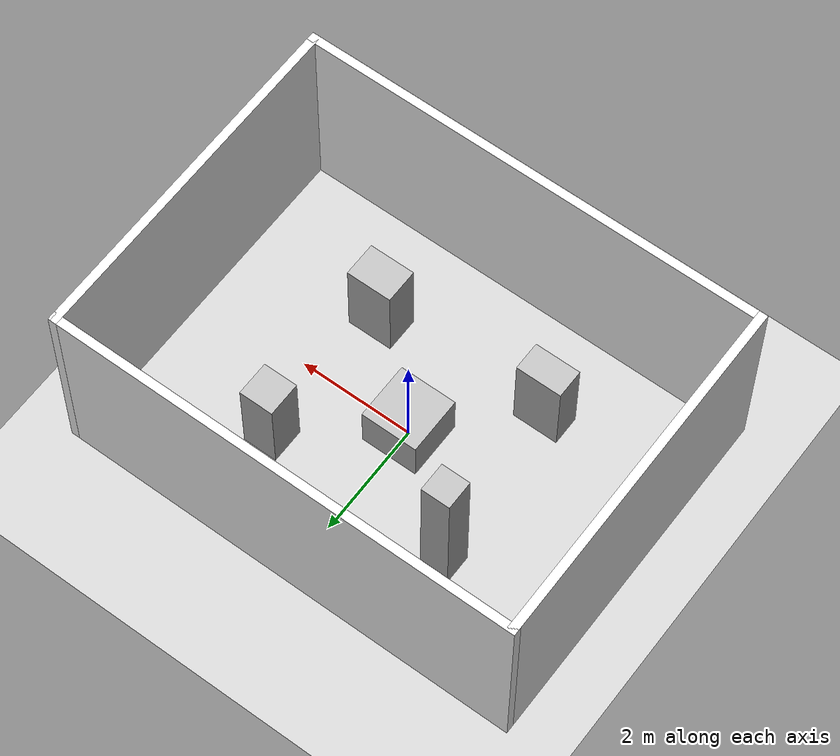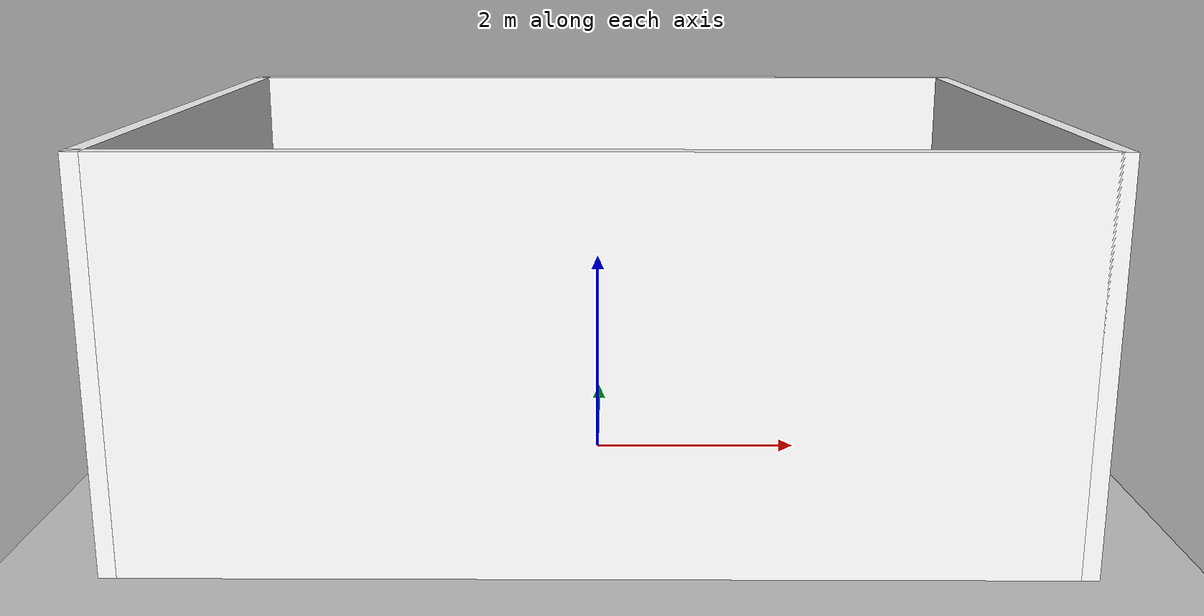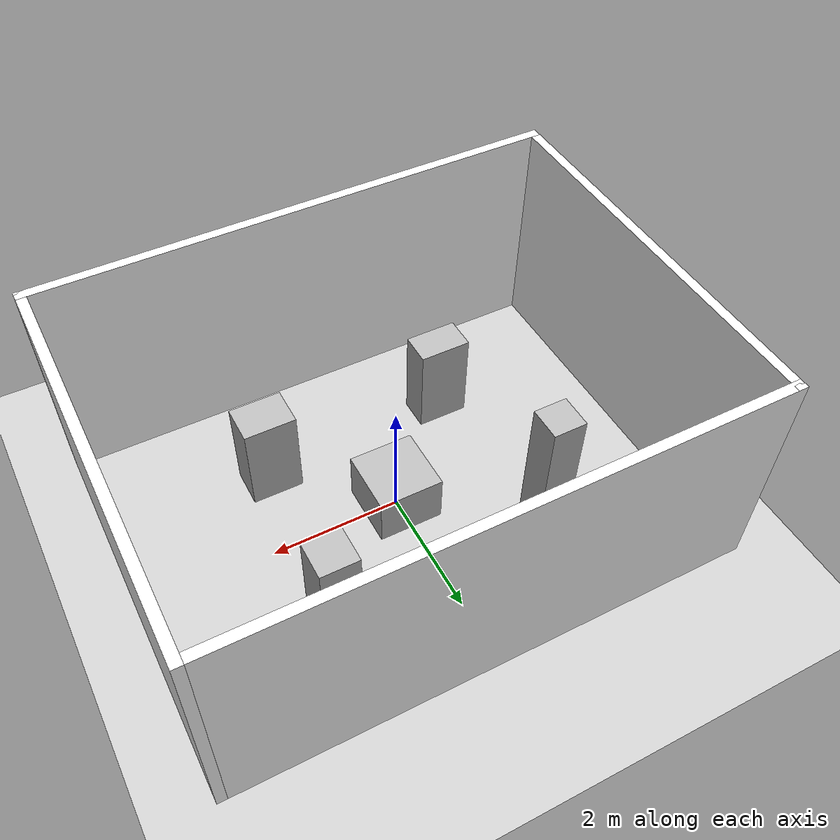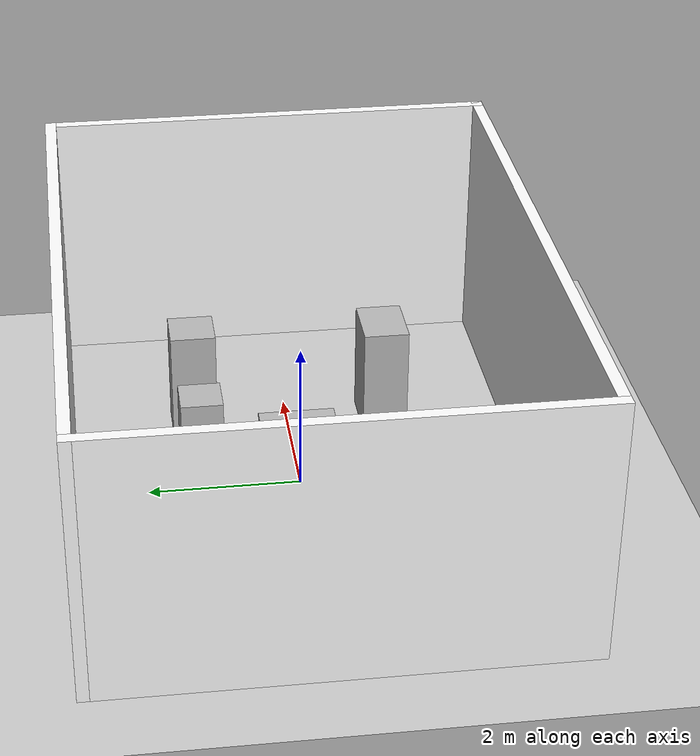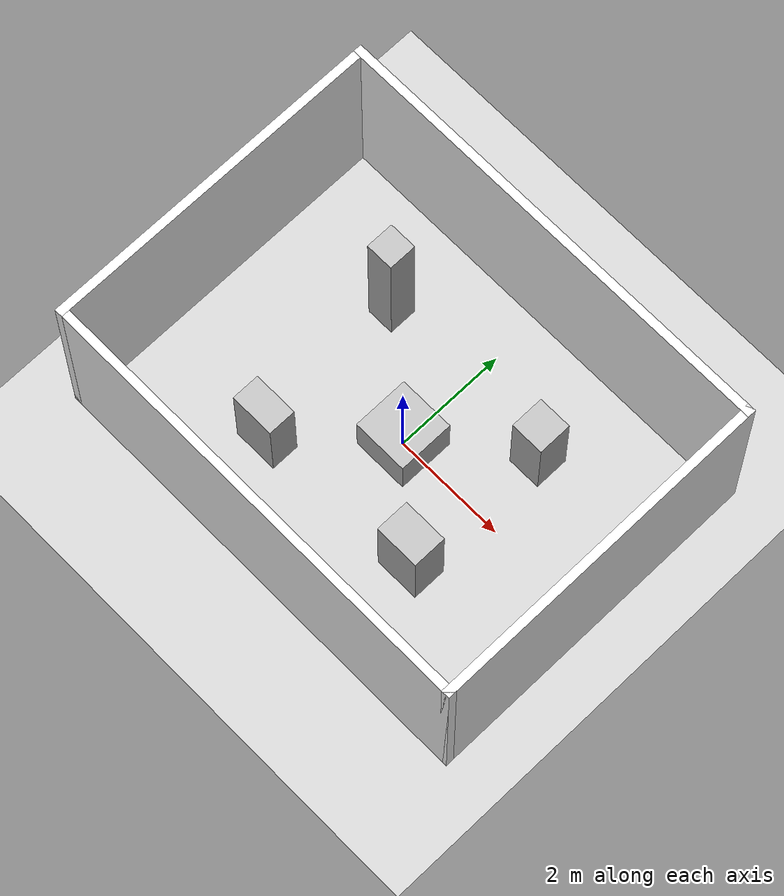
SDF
<sdf version='1.6'>
  <world name='default'>
    <light name='sun' type='directional'>
      <cast_shadows>1</cast_shadows>
      <pose frame=''>0 0 10 0 -0 0</pose>
      <diffuse>0.8 0.8 0.8 1</diffuse>
      <specular>0.2 0.2 0.2 1</specular>
      <attenuation>
        <range>1000</range>
        <constant>0.9</constant>
        <linear>0.01</linear>
        <quadratic>0.001</quadratic>
      </attenuation>
      <direction>-0.5 0.1 -0.9</direction>
    </light>
    <gravity>0 0 -9.8</gravity>
    <magnetic_field>6e-06 2.3e-05 -4.2e-05</magnetic_field>
    <atmosphere type='adiabatic'/>
    <physics name='default_physics' default='0' type='ode'>
      <max_step_size>0.001</max_step_size>
      <real_time_factor>1</real_time_factor>
      <real_time_update_rate>1000</real_time_update_rate>
    </physics>
    <scene>
      <ambient>0.4 0.4 0.4 1</ambient>
      <background>0.7 0.7 0.7 1</background>
      <shadows>1</shadows>
    </scene>
    <audio>
      <device>default</device>
    </audio>
    <wind/>
    <spherical_coordinates>
      <surface_model>EARTH_WGS84</surface_model>
      <latitude_deg>0</latitude_deg>
      <longitude_deg>0</longitude_deg>
      <elevation>0</elevation>
      <heading_deg>0</heading_deg>
    </spherical_coordinates>
    <model name='Indoor20x20'>
      <pose frame=''>0.021784 -0.019828 0 0 -0 0</pose>
      <link name='Wall_0'>
        <collision name='Wall_0_Collision'>
          <geometry>
            <box>
              <size>8.15 0.15 3.5</size>
            </box>
          </geometry>
          <pose frame=''>0 0 1.75 0 -0 0</pose>
          <max_contacts>10</max_contacts>
          <surface>
            <contact>
              <ode/>
            </contact>
            <bounce/>
            <friction>
              <torsional>
                <ode/>
              </torsional>
              <ode/>
            </friction>
          </surface>
        </collision>
        <visual name='Wall_0_Visual'>
          <pose frame=''>0 0 1.75 0 -0 0</pose>
          <geometry>
            <box>
              <size>8.15 0.15 3.5</size>
            </box>
          </geometry>
          <material>
            <script>
              <uri>file://media/materials/scripts/wallpaper.material</uri>
              <name>wallpaper/wallpaper1</name>
            </script>
            <ambient>1 1 1 1</ambient>
          </material>
          <meta>
            <layer>0</layer>
          </meta>
        </visual>
        <pose frame=''>0 3 0 0 -0 3.14159</pose>
        <self_collide>0</self_collide>
        <enable_wind>0</enable_wind>
        <kinematic>0</kinematic>
      </link>

      <link name='Wall_2'>
        <collision name='Wall_2_Collision'>
          <geometry>
            <box>
              <size>6.15 0.15 3.5</size>
            </box>
          </geometry>
          <pose frame=''>0 0 1.75 0 -0 0</pose>
          <max_contacts>10</max_contacts>
          <surface>
            <contact>
              <ode/>
            </contact>
            <bounce/>
            <friction>
              <torsional>
                <ode/>
              </torsional>
              <ode/>
            </friction>
          </surface>
        </collision>
        <visual name='Wall_2_Visual'>
          <pose frame=''>0 0 1.75 0 -0 0</pose>
          <geometry>
            <box>
              <size>6.15 0.15 3.5</size>
            </box>
          </geometry>
          <material>
            <script>
              <uri>file://media/materials/scripts/wallpaper.material</uri>
              <name>wallpaper/wallpaper1</name>
            </script>
            <ambient>1 1 1 1</ambient>
          </material>
          <meta>
            <layer>0</layer>
          </meta>
        </visual>
        <pose frame=''>-4 0 0 0 -0 -1.5708</pose>
        <self_collide>0</self_collide>
        <enable_wind>0</enable_wind>
        <kinematic>0</kinematic>
      </link>
      <link name='Wall_4'>
        <collision name='Wall_4_Collision'>
          <geometry>
            <box>
              <size>8.15 0.15 3.5</size>
            </box>
          </geometry>
          <pose frame=''>0 0 1.75 0 -0 0</pose>
          <max_contacts>10</max_contacts>
          <surface>
            <contact>
              <ode/>
            </contact>
            <bounce/>
            <friction>
              <torsional>
                <ode/>
              </torsional>
              <ode/>
            </friction>
          </surface>
        </collision>
        <visual name='Wall_4_Visual'>
          <pose frame=''>0 0 1.75 0 -0 0</pose>
          <geometry>
            <box>
              <size>8.15 0.15 3.5</size>
            </box>
          </geometry>
          <material>
            <script>
              <uri>file://media/materials/scripts/wallpaper.material</uri>
              <name>wallpaper/wallpaperpolyu</name>
            </script>
            <ambient>1 1 1 1</ambient>
          </material>
          <meta>
            <layer>0</layer>
          </meta>
        </visual>
        <pose frame=''>0 -3 0 0 -0 0</pose>
        <self_collide>0</self_collide>
        <enable_wind>0</enable_wind>
        <kinematic>0</kinematic>
      </link>
      <link name='Wall_6'>
        <collision name='Wall_6_Collision'>
          <geometry>
            <box>
              <size>6.15 0.15 3.5</size>
            </box>
          </geometry>
          <pose frame=''>0 0 1.75 0 -0 0</pose>
          <max_contacts>10</max_contacts>
          <surface>
            <contact>
              <ode/>
            </contact>
            <bounce/>
            <friction>
              <torsional>
                <ode/>
              </torsional>
              <ode/>
            </friction>
          </surface>
        </collision>
        <visual name='Wall_6_Visual'>
          <pose frame=''>0 0 1.75 0 -0 0</pose>
          <geometry>
            <box>
              <size>6.15 0.15 3.5</size>
            </box>
          </geometry>
          <material>
            <script>
              <uri>file://media/materials/scripts/wallpaper.material</uri>
              <name>wallpaper/wallpaper1</name>
            </script>
            <ambient>1 1 1 1</ambient>
          </material>
          <meta>
            <layer>0</layer>
          </meta>
        </visual>
        <pose frame=''>4 0 0 0 -0 -1.5708</pose>
        <self_collide>0</self_collide>
        <enable_wind>0</enable_wind>
        <kinematic>0</kinematic>
      </link>
      <static>1</static>
    </model>
    <model name='my_ground_plane'>
      <static>1</static>
      <link name='link'>
        <collision name='collision'>
          <geometry>
            <plane>
              <normal>0 0 1</normal>
              <size>10 10</size>
            </plane>
          </geometry>
          <surface>
            <friction>
              <ode>
                <mu>100</mu>
                <mu2>50</mu2>
              </ode>
              <torsional>
                <ode/>
              </torsional>
            </friction>
            <contact>
              <ode/>
            </contact>
            <bounce/>
          </surface>
          <max_contacts>10</max_contacts>
        </collision>
        <visual name='visual'>
          <cast_shadows>0</cast_shadows>
          <geometry>
            <plane>
              <normal>0 0 1</normal>
              <size>10 10</size>
            </plane>
          </geometry>
          <material>
            <script>
              <uri>model://ground20x20/materials/scripts</uri>
              <uri>model://ground20x20/materials/textures</uri>
              <name>WoodGround/Image</name>
            </script>
          </material>
        </visual>
        <self_collide>0</self_collide>
        <enable_wind>0</enable_wind>
        <kinematic>0</kinematic>
      </link>
      <pose frame=''>0.013273 0.01508 0 0 -0 0</pose>
    </model>
    <model name='unit_box_0'>
      <pose frame=''>1.62928 1.27733 0.75 0 -0 0</pose>
      <link name='link'>
        <inertial>
          <mass>1</mass>
          <inertia>
            <ixx>0.166667</ixx>
            <ixy>0</ixy>
            <ixz>0</ixz>
            <iyy>0.166667</iyy>
            <iyz>0</iyz>
            <izz>0.166667</izz>
          </inertia>
        </inertial>
        <collision name='collision'>
          <geometry>
            <box>
              <size>0.6 0.6 1.5</size>
            </box>
          </geometry>
          <max_contacts>10</max_contacts>
          <surface>
            <contact>
              <ode/>
            </contact>
            <bounce/>
            <friction>
              <torsional>
                <ode/>
              </torsional>
              <ode/>
            </friction>
          </surface>
        </collision>
        <visual name='visual'>
          <geometry>
            <box>
              <size>0.6 0.6 1.5</size>
            </box>
          </geometry>
          <material>
            <script>
              <uri>file://media/materials/scripts/wallpaper.material</uri>
              <name>wallpaper/wallpaper20</name>
            </script>
          </material>
        </visual>
        <self_collide>0</self_collide>
        <enable_wind>0</enable_wind>
        <kinematic>0</kinematic>
      </link>
    </model>
    <model name='unit_box_1'>
      <pose frame=''>0 0 0.4 0 -0 0</pose>
      <link name='link'>
        <inertial>
          <mass>1</mass>
          <inertia>
            <ixx>0.166667</ixx>
            <ixy>0</ixy>
            <ixz>0</ixz>
            <iyy>0.166667</iyy>
            <iyz>0</iyz>
            <izz>0.166667</izz>
          </inertia>
        </inertial>
        <collision name='collision'>
          <geometry>
            <box>
              <size>1 1 0.8</size>
            </box>
          </geometry>
          <max_contacts>10</max_contacts>
          <surface>
            <contact>
              <ode/>
            </contact>
            <bounce/>
            <friction>
              <torsional>
                <ode/>
              </torsional>
              <ode/>
            </friction>
          </surface>
        </collision>
        <visual name='visual'>
          <geometry>
            <box>
              <size>1 1 0.8</size>
            </box>
          </geometry>
          <material>
            <script>
              <uri>file://media/materials/scripts/wallpaper.material</uri>
              <name>wallpaper/wallpaper19</name>
            </script>
          </material>
        </visual>
        <self_collide>0</self_collide>
        <enable_wind>0</enable_wind>
        <kinematic>0</kinematic>
      </link>
    </model>
    <model name='unit_box_2'>
      <pose frame=''>-1.7 1.40 1.25 0 -0 0</pose>
      <link name='link'>
        <inertial>
          <mass>1</mass>
          <inertia>
            <ixx>0.166667</ixx>
            <ixy>0</ixy>
            <ixz>0</ixz>
            <iyy>0.166667</iyy>
            <iyz>0</iyz>
            <izz>0.166667</izz>
          </inertia>
        </inertial>
        <collision name='collision'>
          <geometry>
            <box>
              <size>0.5 0.5 2.5</size>
            </box>
          </geometry>
          <max_contacts>10</max_contacts>
          <surface>
            <contact>
              <ode/>
            </contact>
            <bounce/>
            <friction>
              <torsional>
                <ode/>
              </torsional>
              <ode/>
            </friction>
          </surface>
        </collision>
        <visual name='visual'>
          <geometry>
            <box>
              <size>0.5 0.5 2.5</size>
            </box>
          </geometry>
          <material>
            <script>
              <uri>file://media/materials/scripts/wallpaper.material</uri>
              <name>wallpaper/wallpaper28</name>
            </script>
          </material>
        </visual>
        <self_collide>0</self_collide>
        <enable_wind>0</enable_wind>
        <kinematic>0</kinematic>
      </link>
    </model>
    <model name='unit_box_3'>
      <pose frame=''>-1.49096 -1.45534 0.75 0 -0 0</pose>
      <link name='link'>
        <inertial>
          <mass>1</mass>
          <inertia>
            <ixx>0.166667</ixx>
            <ixy>0</ixy>
            <ixz>0</ixz>
            <iyy>0.166667</iyy>
            <iyz>0</iyz>
            <izz>0.166667</izz>
          </inertia>
        </inertial>
        <collision name='collision'>
          <geometry>
            <box>
              <size>0.8 0.5 1.5</size>
            </box>
          </geometry>
          <max_contacts>10</max_contacts>
          <surface>
            <contact>
              <ode/>
            </contact>
            <bounce/>
            <friction>
              <torsional>
                <ode/>
              </torsional>
              <ode/>
            </friction>
          </surface>
        </collision>
        <visual name='visual'>
          <geometry>
            <box>
              <size>0.8 0.5 1.5</size>
            </box>
          </geometry>
          <material>
            <script>
              <uri>file://media/materials/scripts/wallpaper.material</uri>
              <name>wallpaper/wallpaper18</name>
            </script>
          </material>
        </visual>
        <self_collide>0</self_collide>
        <enable_wind>0</enable_wind>
        <kinematic>0</kinematic>
      </link>
    </model>
    <model name='unit_box_4'>
      <pose frame=''>1.5 -1.3 0.75 0 -0 0</pose>
      <link name='link'>
        <inertial>
          <mass>1</mass>
          <inertia>
            <ixx>0.166667</ixx>
            <ixy>0</ixy>
            <ixz>0</ixz>
            <iyy>0.166667</iyy>
            <iyz>0</iyz>
            <izz>0.166667</izz>
          </inertia>
        </inertial>
        <collision name='collision'>
          <geometry>
            <box>
              <size>0.8 0.6 1.5</size>
            </box>
          </geometry>
          <max_contacts>10</max_contacts>
          <surface>
            <contact>
              <ode/>
            </contact>
            <bounce/>
            <friction>
              <torsional>
                <ode/>
              </torsional>
              <ode/>
            </friction>
          </surface>
        </collision>
        <visual name='visual'>
          <geometry>
            <box>
              <size>0.8 0.6 1.5</size>
            </box>
          </geometry>
          <material>
            <script>
              <uri>file://media/materials/scripts/wallpaper.material</uri>
              <name>wallpaper/wallpaper17</name>
            </script>
          </material>
        </visual>
        <self_collide>0</self_collide>
        <enable_wind>0</enable_wind>
        <kinematic>0</kinematic>
      </link>
    </model>
    <gui fullscreen='0'>
      <camera name='user_camera'>
        <pose frame=''>-2.94877 -21.0655 39.5508 0 1.16364 1.49619</pose>
        <view_controller>orbit</view_controller>
        <projection_type>perspective</projection_type>
      </camera>
    </gui>
  </world>
</sdf>
